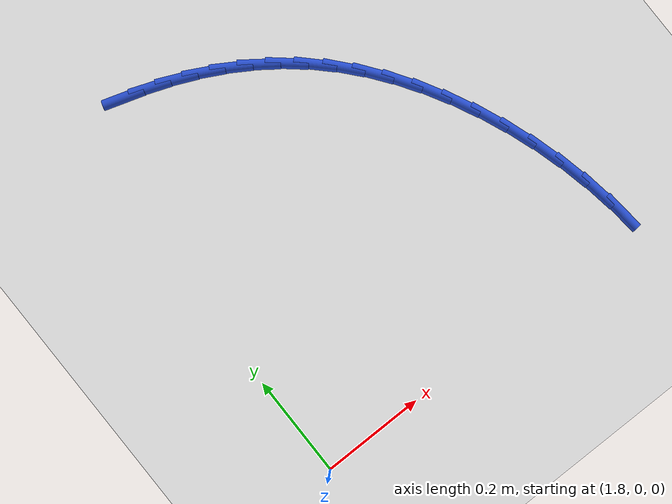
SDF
<sdf version="1.6">
 <world name="default">
  <model name="ground_plane">
   <static>1</static>
   <link name="link">
    <collision name="collision">
     <geometry><plane><normal>0 0 1</normal><size>100 100</size></plane></geometry>
     <surface><friction><ode><mu>100</mu><mu2>50</mu2></ode></friction></surface>
    </collision>
    <visual name="visual">
     <cast_shadows>0</cast_shadows>
     <geometry><plane><normal>0 0 1</normal><size>100 100</size></plane></geometry>
     <material>
      <script><uri>file://media/materials/scripts/gazebo.material</uri><name>Gazebo/WhiteGlow</name></script>
     </material>
    </visual>
   </link>
  </model>
  <model name="line">
   <link name="link_56">
    <pose>1.9271163139204395 0.7649755275785426 0.01 0 1.57 -0.3110469215998444</pose>
    <collision name="collision">
     <geometry><cylinder><radius>0.01</radius><length>0.08</length></cylinder></geometry>
    </collision>
    <visual name="visual">
     <material>
      <script><name>Gazebo/Blue</name><uri>file://media/materials/scripts/gazebo.material</uri></script>
     </material>
     <geometry><cylinder><radius>0.01</radius><length>0.08</length></cylinder></geometry>
    </visual>
   </link>
   <link name="link_57">
    <pose>1.9764543110742427 0.7491142378020027 0.01 0 1.57 -0.36580111199921606</pose>
    <collision name="collision">
     <geometry><cylinder><radius>0.01</radius><length>0.08</length></cylinder></geometry>
    </collision>
    <visual name="visual">
     <material>
      <script><name>Gazebo/Blue</name><uri>file://media/materials/scripts/gazebo.material</uri></script>
     </material>
     <geometry><cylinder><radius>0.01</radius><length>0.08</length></cylinder></geometry>
    </visual>
   </link>
   <link name="link_58">
    <pose>2.024394266530865 0.7307512967466029 0.01 0 1.57 -0.4269735549086533</pose>
    <collision name="collision">
     <geometry><cylinder><radius>0.01</radius><length>0.08</length></cylinder></geometry>
    </collision>
    <visual name="visual">
     <material>
      <script><name>Gazebo/Blue</name><uri>file://media/materials/scripts/gazebo.material</uri></script>
     </material>
     <geometry><cylinder><radius>0.01</radius><length>0.08</length></cylinder></geometry>
    </visual>
   </link>
   <link name="link_59">
    <pose>2.070787895200852 0.7096439084429416 0.01 0 1.57 -0.49266490064206875</pose>
    <collision name="collision">
     <geometry><cylinder><radius>0.01</radius><length>0.08</length></cylinder></geometry>
    </collision>
    <visual name="visual">
     <material>
      <script><name>Gazebo/Blue</name><uri>file://media/materials/scripts/gazebo.material</uri></script>
     </material>
     <geometry><cylinder><radius>0.01</radius><length>0.08</length></cylinder></geometry>
    </visual>
   </link>
   <link name="link_60">
    <pose>2.115534570394699 0.6856231727783874 0.01 0 1.57 -0.5624123535789657</pose>
    <collision name="collision">
     <geometry><cylinder><radius>0.01</radius><length>0.08</length></cylinder></geometry>
    </collision>
    <visual name="visual">
     <material>
      <script><name>Gazebo/Blue</name><uri>file://media/materials/scripts/gazebo.material</uri></script>
     </material>
     <geometry><cylinder><radius>0.01</radius><length>0.08</length></cylinder></geometry>
    </visual>
   </link>
   <link name="link_61">
    <pose>2.1585336654229046 0.6585201896403098 0.01 0 1.57 -0.6355372066139249</pose>
    <collision name="collision">
     <geometry><cylinder><radius>0.01</radius><length>0.08</length></cylinder></geometry>
    </collision>
    <visual name="visual">
     <material>
      <script><name>Gazebo/Blue</name><uri>file://media/materials/scripts/gazebo.material</uri></script>
     </material>
     <geometry><cylinder><radius>0.01</radius><length>0.08</length></cylinder></geometry>
    </visual>
   </link>
   <link name="link_62">
    <pose>2.199684553595964 0.6281660589160778 0.01 0 1.57 -0.7111561845071114</pose>
    <collision name="collision">
     <geometry><cylinder><radius>0.01</radius><length>0.08</length></cylinder></geometry>
    </collision>
    <visual name="visual">
     <material>
      <script><name>Gazebo/Blue</name><uri>file://media/materials/scripts/gazebo.material</uri></script>
     </material>
     <geometry><cylinder><radius>0.01</radius><length>0.08</length></cylinder></geometry>
    </visual>
   </link>
   <link name="link_63">
    <pose>2.2388866082243735 0.5943918804930606 0.01 0 1.57 -0.7882234904319397</pose>
    <collision name="collision">
     <geometry><cylinder><radius>0.01</radius><length>0.08</length></cylinder></geometry>
    </collision>
    <visual name="visual">
     <material>
      <script><name>Gazebo/Blue</name><uri>file://media/materials/scripts/gazebo.material</uri></script>
     </material>
     <geometry><cylinder><radius>0.01</radius><length>0.08</length></cylinder></geometry>
    </visual>
   </link>
   <link name="link_64">
    <pose>2.276039202618631 0.5570287542586275 0.01 0 1.57 -0.8651372965305512</pose>
    <collision name="collision">
     <geometry><cylinder><radius>0.01</radius><length>0.08</length></cylinder></geometry>
    </collision>
    <visual name="visual">
     <material>
      <script><name>Gazebo/Blue</name><uri>file://media/materials/scripts/gazebo.material</uri></script>
     </material>
     <geometry><cylinder><radius>0.01</radius><length>0.08</length></cylinder></geometry>
    </visual>
   </link>
   <link name="link_65">
    <pose>2.311038280999217 0.5159504405210307 0.01 0 1.57 -0.9376949275378799</pose>
    <collision name="collision">
     <geometry><cylinder><radius>0.01</radius><length>0.08</length></cylinder></geometry>
    </collision>
    <visual name="visual">
     <material>
      <script><name>Gazebo/Blue</name><uri>file://media/materials/scripts/gazebo.material</uri></script>
     </material>
     <geometry><cylinder><radius>0.01</radius><length>0.08</length></cylinder></geometry>
    </visual>
   </link>
   <link name="link_66">
    <pose>2.343752235534248 0.4713734675373525 0.01 0 1.57 -1.0050644459832043</pose>
    <collision name="collision">
     <geometry><cylinder><radius>0.01</radius><length>0.08</length></cylinder></geometry>
    </collision>
    <visual name="visual">
     <material>
      <script><name>Gazebo/Blue</name><uri>file://media/materials/scripts/gazebo.material</uri></script>
     </material>
     <geometry><cylinder><radius>0.01</radius><length>0.08</length></cylinder></geometry>
    </visual>
   </link>
   <link name="link_67">
    <pose>2.374036188843586 0.4236794465782663 0.01 0 1.57 -1.0683586394746138</pose>
    <collision name="collision">
     <geometry><cylinder><radius>0.01</radius><length>0.08</length></cylinder></geometry>
    </collision>
    <visual name="visual">
     <material>
      <script><name>Gazebo/Blue</name><uri>file://media/materials/scripts/gazebo.material</uri></script>
     </material>
     <geometry><cylinder><radius>0.01</radius><length>0.08</length></cylinder></geometry>
    </visual>
   </link>
   <link name="link_68">
    <pose>2.4017451784885875 0.37325104710529583 0.01 0 1.57 -1.1286084400754233</pose>
    <collision name="collision">
     <geometry><cylinder><radius>0.01</radius><length>0.08</length></cylinder></geometry>
    </collision>
    <visual name="visual">
     <material>
      <script><name>Gazebo/Blue</name><uri>file://media/materials/scripts/gazebo.material</uri></script>
     </material>
     <geometry><cylinder><radius>0.01</radius><length>0.08</length></cylinder></geometry>
    </visual>
   </link>
   <link name="link_69">
    <pose>2.426734242030611 0.3204709385799638 0.01 0 1.57 -1.1867597768281317</pose>
    <collision name="collision">
     <geometry><cylinder><radius>0.01</radius><length>0.08</length></cylinder></geometry>
    </collision>
    <visual name="visual">
     <material>
      <script><name>Gazebo/Blue</name><uri>file://media/materials/scripts/gazebo.material</uri></script>
     </material>
     <geometry><cylinder><radius>0.01</radius><length>0.08</length></cylinder></geometry>
    </visual>
   </link>
   <link name="link_70">
    <pose>2.4488584170310137 0.2657217904637927 0.01 0 1.57 -1.2436904700492575</pose>
    <collision name="collision">
     <geometry><cylinder><radius>0.01</radius><length>0.08</length></cylinder></geometry>
    </collision>
    <visual name="visual">
     <material>
      <script><name>Gazebo/Blue</name><uri>file://media/materials/scripts/gazebo.material</uri></script>
     </material>
     <geometry><cylinder><radius>0.01</radius><length>0.08</length></cylinder></geometry>
    </visual>
   </link>
   <link name="link_71">
    <pose>2.467972741051153 0.20938627221830505 0.01 0 1.57 -1.3002303840252758</pose>
    <collision name="collision">
     <geometry><cylinder><radius>0.01</radius><length>0.08</length></cylinder></geometry>
    </collision>
    <visual name="visual">
     <material>
      <script><name>Gazebo/Blue</name><uri>file://media/materials/scripts/gazebo.material</uri></script>
     </material>
     <geometry><cylinder><radius>0.01</radius><length>0.08</length></cylinder></geometry>
    </visual>
   </link>
   <link name="link_72">
    <pose>2.483932251652385 0.15184705330502465 0.01 0 1.57 -1.3571819710642343</pose>
    <collision name="collision">
     <geometry><cylinder><radius>0.01</radius><length>0.08</length></cylinder></geometry>
    </collision>
    <visual name="visual">
     <material>
      <script><name>Gazebo/Blue</name><uri>file://media/materials/scripts/gazebo.material</uri></script>
     </material>
     <geometry><cylinder><radius>0.01</radius><length>0.08</length></cylinder></geometry>
    </visual>
   </link>
   <link name="link_73">
    <pose>2.496591986396068 0.09348680318547381 0.01 0 1.57 -1.4153395242383744</pose>
    <collision name="collision">
     <geometry><cylinder><radius>0.01</radius><length>0.08</length></cylinder></geometry>
    </collision>
    <visual name="visual">
     <material>
      <script><name>Gazebo/Blue</name><uri>file://media/materials/scripts/gazebo.material</uri></script>
     </material>
     <geometry><cylinder><radius>0.01</radius><length>0.08</length></cylinder></geometry>
    </visual>
   </link>
   <link name="link_74">
    <pose>2.50580698284356 0.0346881913211753 0.01 0 1.57 -1.4755057776751792</pose>
    <collision name="collision">
     <geometry><cylinder><radius>0.01</radius><length>0.08</length></cylinder></geometry>
    </collision>
    <visual name="visual">
     <material>
      <script><name>Gazebo/Blue</name><uri>file://media/materials/scripts/gazebo.material</uri></script>
     </material>
     <geometry><cylinder><radius>0.01</radius><length>0.08</length></cylinder></geometry>
    </visual>
   </link>
  </model>
 </world>
</sdf>
